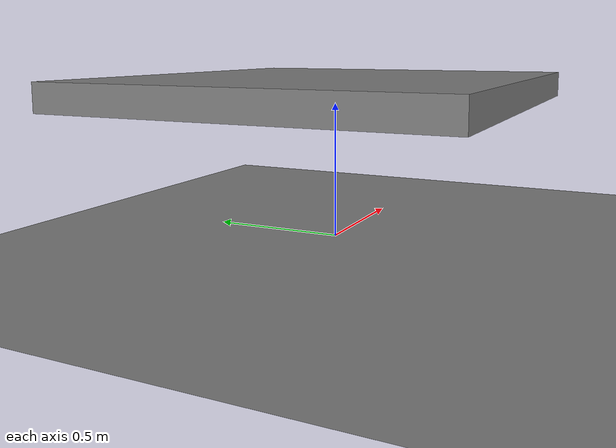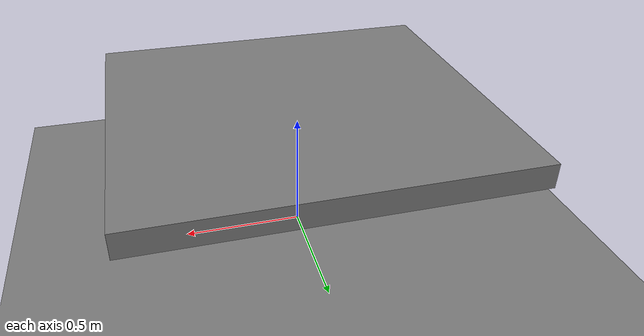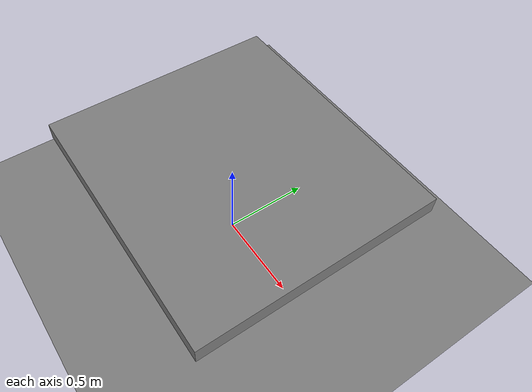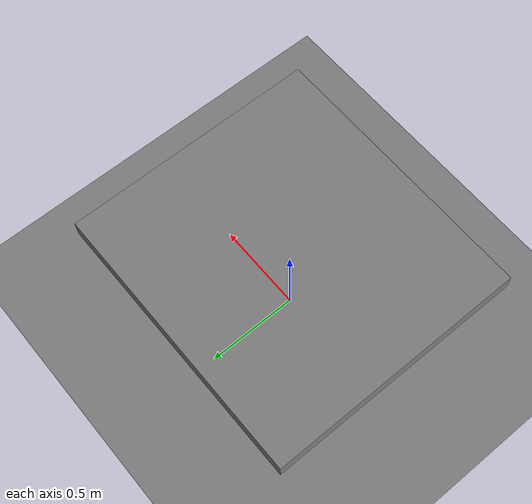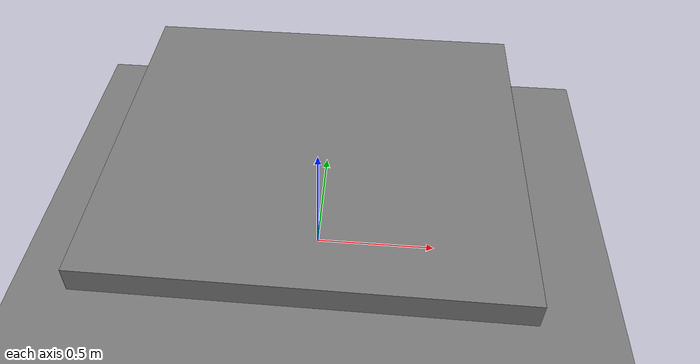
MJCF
<mujoco model="table_arena">
  <compiler angle="radian" usethread="false"/>
  <option collision="dynamic"/>
  <asset>
    <texture builtin="gradient" height="256" rgb1=".9 .9 1." rgb2=".2 .3 .4" type="skybox" width="256"/>
  </asset>
  <worldbody>
    <geom condim="3" name="floor" pos="0 0 0" size="3 3 .125" type="plane"/>
    <body name="table" pos="0 0 0.55">
      <geom pos="0 0 0" size="0.76 0.69 0.05" type="box" name="table_geom" friction="1 0.005 0.0001"
            solimp="0.99 0.9999 0.001 0.1 6" solref="-60000 -1000"/>
      <body pos="0 0 0" name="table_top"/>
    </body>
    <light diffuse=".8 .8 .8" dir="0 -.15 -1" directional="false" pos="0 0 4.0" specular="0.3 0.3 0.3"
           castshadow="false"/>
    <camera mode="fixed" name="frontview" pos="1.6 0 1.45" quat="0.56 0.43 0.43 0.56"/>
    <camera mode="fixed" name="birdview" pos="-0.2 0 3.0" quat="0.7071 0 0 0.7071"/>
    <camera mode="fixed" name="agentview" pos="0.5 0 1.35" quat="0.653 0.271 0.271 0.653"/>
  </worldbody>
</mujoco>
